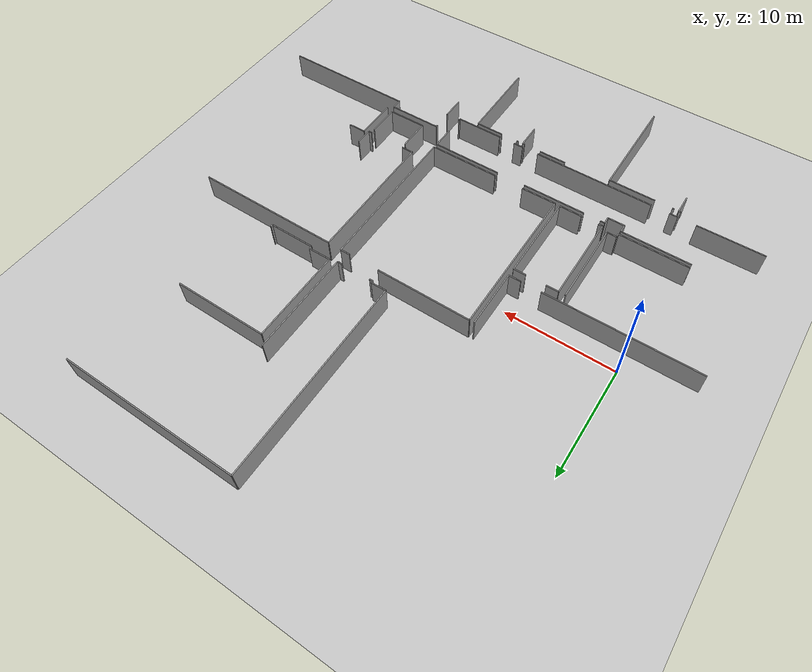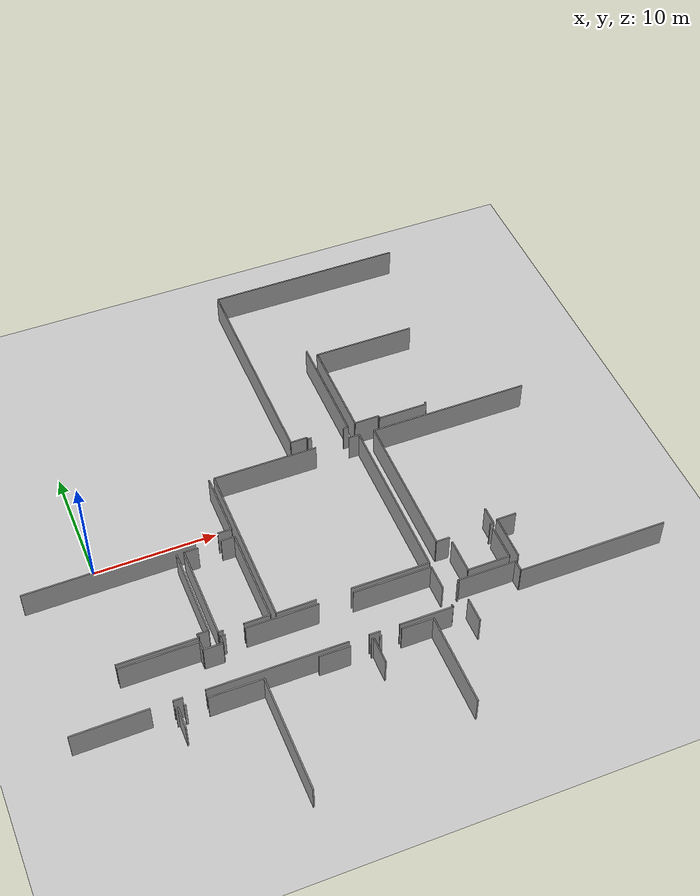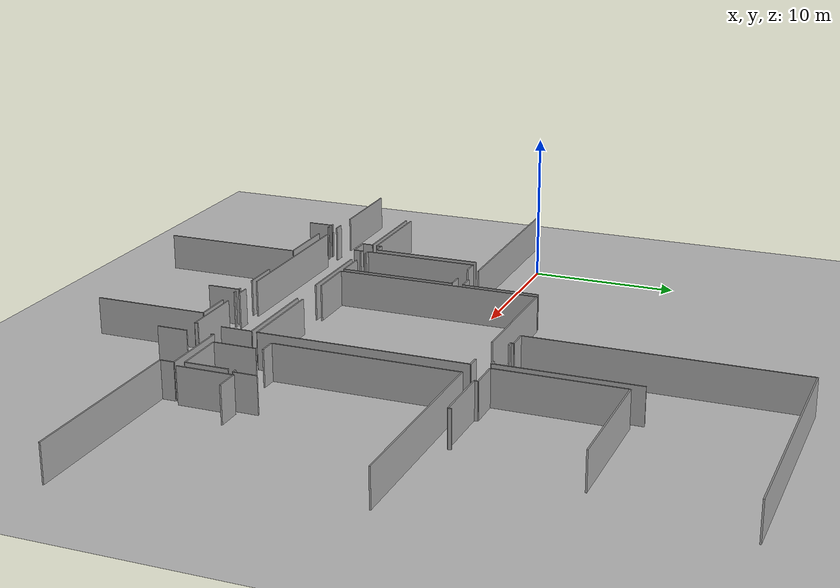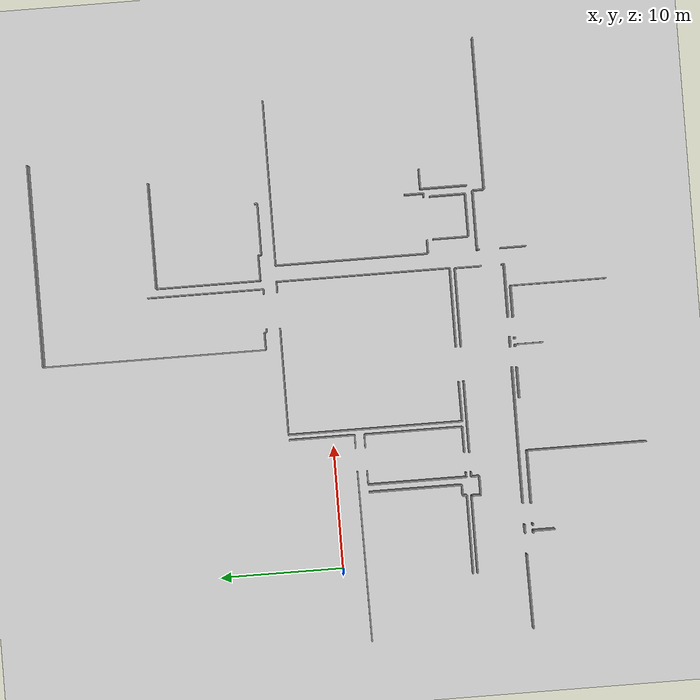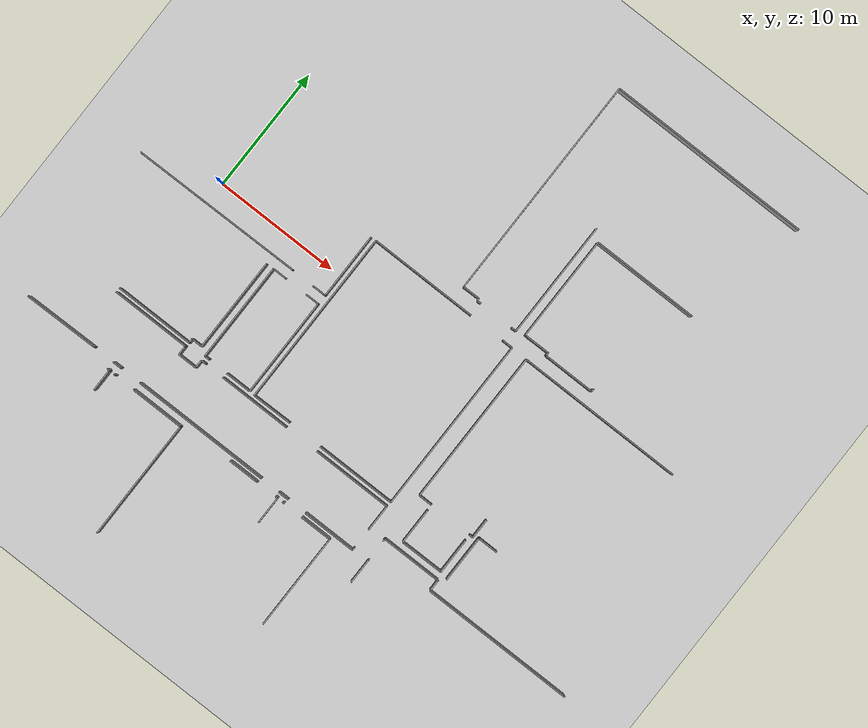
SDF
<sdf version="1.6">
 <world name="default">
  <model name="ground_plane">
   <static>1</static>
   <link name="link">
    <collision name="collision">
     <geometry><plane><normal>0 0 1</normal><size>100 100</size></plane></geometry>
     <surface><friction><ode><mu>100</mu><mu2>50</mu2></ode></friction></surface>
    </collision>
    <visual name="visual">
     <cast_shadows>0</cast_shadows>
     <geometry><plane><normal>0 0 1</normal><size>100 100</size></plane></geometry>
     <material>
      <script><uri>file://media/materials/scripts/gazebo.material</uri><name>Gazebo/Grey</name></script>
     </material>
    </visual>
   </link>
  </model>
  <model name="0510035342_A_40_1_101">
   <static>1</static>
   <link name="Wall_110">
    <collision name="Wall_110_Collision">
     <geometry><box><size>6.30219445291 0.1 2.5</size></box></geometry>
     <pose>3.15109722646 0 1.25 0 0 0</pose>
    </collision>
    <visual name="Wall_110_Visual">
     <pose>3.15109722646 0 1.25 0 0 0</pose>
     <geometry><box><size>6.30219445291 0.1 2.5</size></box></geometry>
     <material>
      <script><uri>file://media/materials/scripts/gazebo.material</uri><name>Gazebo/Grey</name></script>
      <ambient>1 1 1 1</ambient>
     </material>
    </visual>
    <pose>114.588286092 -36.1040841207 0 0 0 0.0</pose>
   </link>
   <link name="Wall_111">
    <collision name="Wall_111_Collision">
     <geometry><box><size>0.749009448339 0.1 2.5</size></box></geometry>
     <pose>0.374504724169 0 1.25 0 0 0</pose>
    </collision>
    <visual name="Wall_111_Visual">
     <pose>0.374504724169 0 1.25 0 0 0</pose>
     <geometry><box><size>0.749009448339 0.1 2.5</size></box></geometry>
     <material>
      <script><uri>file://media/materials/scripts/gazebo.material</uri><name>Gazebo/Grey</name></script>
      <ambient>1 1 1 1</ambient>
     </material>
    </visual>
    <pose>120.890480545 -36.1040841207 0 0 0 -1.57079632679</pose>
   </link>
   <link name="Wall_112">
    <collision name="Wall_112_Collision">
     <geometry><box><size>1.53637102509 0.1 2.5</size></box></geometry>
     <pose>0.768185512547 0 1.25 0 0 0</pose>
    </collision>
    <visual name="Wall_112_Visual">
     <pose>0.768185512547 0 1.25 0 0 0</pose>
     <geometry><box><size>1.53637102509 0.1 2.5</size></box></geometry>
     <material>
      <script><uri>file://media/materials/scripts/gazebo.material</uri><name>Gazebo/Grey</name></script>
      <ambient>1 1 1 1</ambient>
     </material>
    </visual>
    <pose>120.890480545 -36.853093569 0 0 0 0.0</pose>
   </link>
   <link name="Wall_113">
    <collision name="Wall_113_Collision">
     <geometry><box><size>0.653002133496 0.1 2.5</size></box></geometry>
     <pose>0.326501066748 0 1.25 0 0 0</pose>
    </collision>
    <visual name="Wall_113_Visual">
     <pose>0.326501066748 0 1.25 0 0 0</pose>
     <geometry><box><size>0.653002133496 0.1 2.5</size></box></geometry>
     <material>
      <script><uri>file://media/materials/scripts/gazebo.material</uri><name>Gazebo/Grey</name></script>
      <ambient>1 1 1 1</ambient>
     </material>
    </visual>
    <pose>122.42685157 -36.853093569 0 0 0 1.57079632679</pose>
   </link>
   <link name="Wall_114">
    <collision name="Wall_114_Collision">
     <geometry><box><size>0.403332317383 0.1 2.5</size></box></geometry>
     <pose>0.201666158691 0 1.25 0 0 0</pose>
    </collision>
    <visual name="Wall_114_Visual">
     <pose>0.201666158691 0 1.25 0 0 0</pose>
     <geometry><box><size>0.403332317383 0.1 2.5</size></box></geometry>
     <material>
      <script><uri>file://media/materials/scripts/gazebo.material</uri><name>Gazebo/Grey</name></script>
      <ambient>1 1 1 1</ambient>
     </material>
    </visual>
    <pose>122.42685157 -36.2000914355 0 0 0 0.0</pose>
   </link>
   <link name="Wall_115">
    <collision name="Wall_115_Collision">
     <geometry><box><size>5.81174438687 0.1 2.5</size></box></geometry>
     <pose>2.90587219344 0 1.25 0 0 0</pose>
    </collision>
    <visual name="Wall_115_Visual">
     <pose>2.90587219344 0 1.25 0 0 0</pose>
     <geometry><box><size>5.81174438687 0.1 2.5</size></box></geometry>
     <material>
      <script><uri>file://media/materials/scripts/gazebo.material</uri><name>Gazebo/Grey</name></script>
      <ambient>1 1 1 1</ambient>
     </material>
    </visual>
    <pose>124.382302144 -36.2000914355 0 0 0 0.0</pose>
   </link>
   <link name="Wall_116">
    <collision name="Wall_116_Collision">
     <geometry><box><size>6.40480544549 0.1 2.5</size></box></geometry>
     <pose>3.20240272275 0 1.25 0 0 0</pose>
    </collision>
    <visual name="Wall_116_Visual">
     <pose>3.20240272275 0 1.25 0 0 0</pose>
     <geometry><box><size>6.40480544549 0.1 2.5</size></box></geometry>
     <material>
      <script><uri>file://media/materials/scripts/gazebo.material</uri><name>Gazebo/Grey</name></script>
      <ambient>1 1 1 1</ambient>
     </material>
    </visual>
    <pose>132.941684446 -36.2000914355 0 0 0 0.0</pose>
   </link>
   <link name="Wall_117">
    <collision name="Wall_117_Collision">
     <geometry><box><size>2.1334958854 0.1 2.5</size></box></geometry>
     <pose>1.0667479427 0 1.25 0 0 0</pose>
    </collision>
    <visual name="Wall_117_Visual">
     <pose>1.0667479427 0 1.25 0 0 0</pose>
     <geometry><box><size>2.1334958854 0.1 2.5</size></box></geometry>
     <material>
      <script><uri>file://media/materials/scripts/gazebo.material</uri><name>Gazebo/Grey</name></script>
      <ambient>1 1 1 1</ambient>
     </material>
    </visual>
    <pose>139.346489891 -36.2000914355 0 0 0 -1.57079632679</pose>
   </link>
   <link name="Wall_118">
    <collision name="Wall_118_Collision">
     <geometry><box><size>0.200396220664 0.1 2.5</size></box></geometry>
     <pose>0.100198110332 0 1.25 0 0 0</pose>
    </collision>
    <visual name="Wall_118_Visual">
     <pose>0.100198110332 0 1.25 0 0 0</pose>
     <geometry><box><size>0.200396220664 0.1 2.5</size></box></geometry>
     <material>
      <script><uri>file://media/materials/scripts/gazebo.material</uri><name>Gazebo/Grey</name></script>
      <ambient>1 1 1 1</ambient>
     </material>
    </visual>
    <pose>139.346489891 -39.9870466321 0 0 0 -1.57079632679</pose>
   </link>
   <link name="Wall_119">
    <collision name="Wall_119_Collision">
     <geometry><box><size>4.32617088286 0.1 2.5</size></box></geometry>
     <pose>2.16308544143 0 1.25 0 0 0</pose>
    </collision>
    <visual name="Wall_119_Visual">
     <pose>2.16308544143 0 1.25 0 0 0</pose>
     <geometry><box><size>4.32617088286 0.1 2.5</size></box></geometry>
     <material>
      <script><uri>file://media/materials/scripts/gazebo.material</uri><name>Gazebo/Grey</name></script>
      <ambient>1 1 1 1</ambient>
     </material>
    </visual>
    <pose>139.346489891 -40.1874428528 0 0 0 3.14159265359</pose>
   </link>
   <link name="Wall_120">
    <collision name="Wall_120_Collision">
     <geometry><box><size>0.883876866809 0.1 2.5</size></box></geometry>
     <pose>0.441938433404 0 1.25 0 0 0</pose>
    </collision>
    <visual name="Wall_120_Visual">
     <pose>0.441938433404 0 1.25 0 0 0</pose>
     <geometry><box><size>0.883876866809 0.1 2.5</size></box></geometry>
     <material>
      <script><uri>file://media/materials/scripts/gazebo.material</uri><name>Gazebo/Grey</name></script>
      <ambient>1 1 1 1</ambient>
     </material>
    </visual>
    <pose>133.48115412 -40.1874428528 0 0 0 3.14159265359</pose>
   </link>
   <link name="Wall_121">
    <collision name="Wall_121_Collision">
     <geometry><box><size>11.0850350503 0.1 2.5</size></box></geometry>
     <pose>5.54251752514 0 1.25 0 0 0</pose>
    </collision>
    <visual name="Wall_121_Visual">
     <pose>5.54251752514 0 1.25 0 0 0</pose>
     <geometry><box><size>11.0850350503 0.1 2.5</size></box></geometry>
     <material>
      <script><uri>file://media/materials/scripts/gazebo.material</uri><name>Gazebo/Grey</name></script>
      <ambient>1 1 1 1</ambient>
     </material>
    </visual>
    <pose>131.028903789 -40.1874428528 0 0 0 3.14159265359</pose>
   </link>
   <link name="Wall_122">
    <collision name="Wall_122_Collision">
     <geometry><box><size>0.729960377934 0.1 2.5</size></box></geometry>
     <pose>0.364980188967 0 1.25 0 0 0</pose>
    </collision>
    <visual name="Wall_122_Visual">
     <pose>0.364980188967 0 1.25 0 0 0</pose>
     <geometry><box><size>0.729960377934 0.1 2.5</size></box></geometry>
     <material>
      <script><uri>file://media/materials/scripts/gazebo.material</uri><name>Gazebo/Grey</name></script>
      <ambient>1 1 1 1</ambient>
     </material>
    </visual>
    <pose>118.240119882 -40.1874428528 0 0 0 3.14159265359</pose>
   </link>
   <link name="Wall_123">
    <collision name="Wall_123_Collision">
     <geometry><box><size>6.03560372053 0.1 2.5</size></box></geometry>
     <pose>3.01780186027 0 1.25 0 0 0</pose>
    </collision>
    <visual name="Wall_123_Visual">
     <pose>3.01780186027 0 1.25 0 0 0</pose>
     <geometry><box><size>6.03560372053 0.1 2.5</size></box></geometry>
     <material>
      <script><uri>file://media/materials/scripts/gazebo.material</uri><name>Gazebo/Grey</name></script>
      <ambient>1 1 1 1</ambient>
     </material>
    </visual>
    <pose>115.824951742 -40.1874428528 0 0 0 -3.13081956647</pose>
   </link>
   <link name="Wall_151">
    <collision name="Wall_151_Collision">
     <geometry><box><size>5.3149446307 0.1 2.5</size></box></geometry>
     <pose>2.65747231535 0 1.25 0 0 0</pose>
    </collision>
    <visual name="Wall_151_Visual">
     <pose>2.65747231535 0 1.25 0 0 0</pose>
     <geometry><box><size>5.3149446307 0.1 2.5</size></box></geometry>
     <material>
      <script><uri>file://media/materials/scripts/gazebo.material</uri><name>Gazebo/Grey</name></script>
      <ambient>1 1 1 1</ambient>
     </material>
    </visual>
    <pose>126.522147719 -21.7410850351 0 0 0 -1.57079632679</pose>
   </link>
   <link name="Wall_152">
    <collision name="Wall_152_Collision">
     <geometry><box><size>1.1183074266 0.1 2.5</size></box></geometry>
     <pose>0.559153713299 0 1.25 0 0 0</pose>
    </collision>
    <visual name="Wall_152_Visual">
     <pose>0.559153713299 0 1.25 0 0 0</pose>
     <geometry><box><size>1.1183074266 0.1 2.5</size></box></geometry>
     <material>
      <script><uri>file://media/materials/scripts/gazebo.material</uri><name>Gazebo/Grey</name></script>
      <ambient>1 1 1 1</ambient>
     </material>
    </visual>
    <pose>126.522147719 -27.0560296658 0 0 0 3.14159265359</pose>
   </link>
   <link name="Wall_153">
    <collision name="Wall_153_Collision">
     <geometry><box><size>13.7776782479 0.1 2.5</size></box></geometry>
     <pose>6.88883912393 0 1.25 0 0 0</pose>
    </collision>
    <visual name="Wall_153_Visual">
     <pose>6.88883912393 0 1.25 0 0 0</pose>
     <geometry><box><size>13.7776782479 0.1 2.5</size></box></geometry>
     <material>
      <script><uri>file://media/materials/scripts/gazebo.material</uri><name>Gazebo/Grey</name></script>
      <ambient>1 1 1 1</ambient>
     </material>
    </visual>
    <pose>123.555826476 -27.0560296658 0 0 0 -3.13421869979</pose>
   </link>
   <link name="Wall_154">
    <collision name="Wall_154_Collision">
     <geometry><box><size>7.96479731789 0.1 2.5</size></box></geometry>
     <pose>3.98239865895 0 1.25 0 0 0</pose>
    </collision>
    <visual name="Wall_154_Visual">
     <pose>3.98239865895 0 1.25 0 0 0</pose>
     <geometry><box><size>7.96479731789 0.1 2.5</size></box></geometry>
     <material>
      <script><uri>file://media/materials/scripts/gazebo.material</uri><name>Gazebo/Grey</name></script>
      <ambient>1 1 1 1</ambient>
     </material>
    </visual>
    <pose>122.42050188 -35.8048867215 0 0 0 1.57079632679</pose>
   </link>
   <link name="Wall_155">
    <collision name="Wall_155_Collision">
     <geometry><box><size>1.11322767449 0.1 2.5</size></box></geometry>
     <pose>0.556613837245 0 1.25 0 0 0</pose>
    </collision>
    <visual name="Wall_155_Visual">
     <pose>0.556613837245 0 1.25 0 0 0</pose>
     <geometry><box><size>1.11322767449 0.1 2.5</size></box></geometry>
     <material>
      <script><uri>file://media/materials/scripts/gazebo.material</uri><name>Gazebo/Grey</name></script>
      <ambient>1 1 1 1</ambient>
     </material>
    </visual>
    <pose>122.42050188 -27.8400894036 0 0 0 0.0</pose>
   </link>
   <link name="Wall_156">
    <collision name="Wall_156_Collision">
     <geometry><box><size>1.10459209591 0.1 2.5</size></box></geometry>
     <pose>0.552296047953 0 1.25 0 0 0</pose>
    </collision>
    <visual name="Wall_156_Visual">
     <pose>0.552296047953 0 1.25 0 0 0</pose>
     <geometry><box><size>1.10459209591 0.1 2.5</size></box></geometry>
     <material>
      <script><uri>file://media/materials/scripts/gazebo.material</uri><name>Gazebo/Grey</name></script>
      <ambient>1 1 1 1</ambient>
     </material>
    </visual>
    <pose>125.394696739 -27.8400894036 0 0 0 0.0</pose>
   </link>
   <link name="Wall_157">
    <collision name="Wall_157_Collision">
     <geometry><box><size>7.95387585086 0.1 2.5</size></box></geometry>
     <pose>3.97693792543 0 1.25 0 0 0</pose>
    </collision>
    <visual name="Wall_157_Visual">
     <pose>3.97693792543 0 1.25 0 0 0</pose>
     <geometry><box><size>7.95387585086 0.1 2.5</size></box></geometry>
     <material>
      <script><uri>file://media/materials/scripts/gazebo.material</uri><name>Gazebo/Grey</name></script>
      <ambient>1 1 1 1</ambient>
     </material>
    </visual>
    <pose>126.499288835 -27.8400894036 0 0 0 -1.57079632679</pose>
   </link>
   <link name="Wall_158">
    <collision name="Wall_158_Collision">
     <geometry><box><size>2.08701615361 0.1 2.5</size></box></geometry>
     <pose>1.04350807681 0 1.25 0 0 0</pose>
    </collision>
    <visual name="Wall_158_Visual">
     <pose>1.04350807681 0 1.25 0 0 0</pose>
     <geometry><box><size>2.08701615361 0.1 2.5</size></box></geometry>
     <material>
      <script><uri>file://media/materials/scripts/gazebo.material</uri><name>Gazebo/Grey</name></script>
      <ambient>1 1 1 1</ambient>
     </material>
    </visual>
    <pose>126.499288835 -35.7939652545 0 0 0 3.14159265359</pose>
   </link>
   <link name="Wall_159">
    <collision name="Wall_159_Collision">
     <geometry><box><size>0.395355592369 0.1 2.5</size></box></geometry>
     <pose>0.197677796185 0 1.25 0 0 0</pose>
    </collision>
    <visual name="Wall_159_Visual">
     <pose>0.197677796185 0 1.25 0 0 0</pose>
     <geometry><box><size>0.395355592369 0.1 2.5</size></box></geometry>
     <material>
      <script><uri>file://media/materials/scripts/gazebo.material</uri><name>Gazebo/Grey</name></script>
      <ambient>1 1 1 1</ambient>
     </material>
    </visual>
    <pose>122.815706594 -35.7939652545 0 0 0 -3.11396472379</pose>
   </link>
   <link name="Wall_162">
    <collision name="Wall_162_Collision">
     <geometry><box><size>7.54546378137 0.1 2.5</size></box></geometry>
     <pose>3.77273189068 0 1.25 0 0 0</pose>
    </collision>
    <visual name="Wall_162_Visual">
     <pose>3.77273189068 0 1.25 0 0 0</pose>
     <geometry><box><size>7.54546378137 0.1 2.5</size></box></geometry>
     <material>
      <script><uri>file://media/materials/scripts/gazebo.material</uri><name>Gazebo/Grey</name></script>
      <ambient>1 1 1 1</ambient>
     </material>
    </visual>
    <pose>121.813217515 -27.8459311186 0 0 0 -1.57079632679</pose>
   </link>
   <link name="Wall_163">
    <collision name="Wall_163_Collision">
     <geometry><box><size>0.867367672458 0.1 2.5</size></box></geometry>
     <pose>0.433683836229 0 1.25 0 0 0</pose>
    </collision>
    <visual name="Wall_163_Visual">
     <pose>0.433683836229 0 1.25 0 0 0</pose>
     <geometry><box><size>0.867367672458 0.1 2.5</size></box></geometry>
     <material>
      <script><uri>file://media/materials/scripts/gazebo.material</uri><name>Gazebo/Grey</name></script>
      <ambient>1 1 1 1</ambient>
     </material>
    </visual>
    <pose>121.813217515 -35.3913948999 0 0 0 3.14159265359</pose>
   </link>
   <link name="Wall_164">
    <collision name="Wall_164_Collision">
     <geometry><box><size>0.348724982221 0.1 2.5</size></box></geometry>
     <pose>0.17436249111 0 1.25 0 0 0</pose>
    </collision>
    <visual name="Wall_164_Visual">
     <pose>0.17436249111 0 1.25 0 0 0</pose>
     <geometry><box><size>0.348724982221 0.1 2.5</size></box></geometry>
     <material>
      <script><uri>file://media/materials/scripts/gazebo.material</uri><name>Gazebo/Grey</name></script>
      <ambient>1 1 1 1</ambient>
     </material>
    </visual>
    <pose>120.945849843 -35.3913948999 0 0 0 -1.57079632679</pose>
   </link>
   <link name="Wall_165">
    <collision name="Wall_165_Collision">
     <geometry><box><size>6.36543736666 0.1 2.5</size></box></geometry>
     <pose>3.18271868333 0 1.25 0 0 0</pose>
    </collision>
    <visual name="Wall_165_Visual">
     <pose>3.18271868333 0 1.25 0 0 0</pose>
     <geometry><box><size>6.36543736666 0.1 2.5</size></box></geometry>
     <material>
      <script><uri>file://media/materials/scripts/gazebo.material</uri><name>Gazebo/Grey</name></script>
      <ambient>1 1 1 1</ambient>
     </material>
    </visual>
    <pose>120.945849843 -35.7401198821 0 0 0 3.14159265359</pose>
   </link>
   <link name="Wall_167">
    <collision name="Wall_167_Collision">
     <geometry><box><size>14.1077415422 0.1 2.5</size></box></geometry>
     <pose>7.05387077111 0 1.25 0 0 0</pose>
    </collision>
    <visual name="Wall_167_Visual">
     <pose>7.05387077111 0 1.25 0 0 0</pose>
     <geometry><box><size>14.1077415422 0.1 2.5</size></box></geometry>
     <material>
      <script><uri>file://media/materials/scripts/gazebo.material</uri><name>Gazebo/Grey</name></script>
      <ambient>1 1 1 1</ambient>
     </material>
    </visual>
    <pose>126.943259169 -35.8272376308 0 0 0 1.57079632679</pose>
   </link>
   <link name="Wall_168">
    <collision name="Wall_168_Collision">
     <geometry><box><size>8.67824850147 0.1 2.5</size></box></geometry>
     <pose>4.33912425074 0 1.25 0 0 0</pose>
    </collision>
    <visual name="Wall_168_Visual">
     <pose>4.33912425074 0 1.25 0 0 0</pose>
     <geometry><box><size>8.67824850147 0.1 2.5</size></box></geometry>
     <material>
      <script><uri>file://media/materials/scripts/gazebo.material</uri><name>Gazebo/Grey</name></script>
      <ambient>1 1 1 1</ambient>
     </material>
    </visual>
    <pose>126.943259169 -21.7194960886 0 0 0 0.0</pose>
   </link>
   <link name="Wall_169">
    <collision name="Wall_169_Collision">
     <geometry><box><size>0.876257238647 0.1 2.5</size></box></geometry>
     <pose>0.438128619323 0 1.25 0 0 0</pose>
    </collision>
    <visual name="Wall_169_Visual">
     <pose>0.438128619323 0 1.25 0 0 0</pose>
     <geometry><box><size>0.876257238647 0.1 2.5</size></box></geometry>
     <material>
      <script><uri>file://media/materials/scripts/gazebo.material</uri><name>Gazebo/Grey</name></script>
      <ambient>1 1 1 1</ambient>
     </material>
    </visual>
    <pose>138.507822818 -21.7194960886 0 0 0 0.0</pose>
   </link>
   <link name="Wall_170">
    <collision name="Wall_170_Collision">
     <geometry><box><size>14.0744691659 0.1 2.5</size></box></geometry>
     <pose>7.03723458295 0 1.25 0 0 0</pose>
    </collision>
    <visual name="Wall_170_Visual">
     <pose>7.03723458295 0 1.25 0 0 0</pose>
     <geometry><box><size>14.0744691659 0.1 2.5</size></box></geometry>
     <material>
      <script><uri>file://media/materials/scripts/gazebo.material</uri><name>Gazebo/Grey</name></script>
      <ambient>1 1 1 1</ambient>
     </material>
    </visual>
    <pose>139.384080057 -21.7194960886 0 0 0 -1.57079632679</pose>
   </link>
   <link name="Wall_171">
    <collision name="Wall_171_Collision">
     <geometry><box><size>6.44341156152 0.1 2.5</size></box></geometry>
     <pose>3.22170578076 0 1.25 0 0 0</pose>
    </collision>
    <visual name="Wall_171_Visual">
     <pose>3.22170578076 0 1.25 0 0 0</pose>
     <geometry><box><size>6.44341156152 0.1 2.5</size></box></geometry>
     <material>
      <script><uri>file://media/materials/scripts/gazebo.material</uri><name>Gazebo/Grey</name></script>
      <ambient>1 1 1 1</ambient>
     </material>
    </visual>
    <pose>139.384080057 -35.7939652545 0 0 0 3.14159265359</pose>
   </link>
   <link name="Wall_172">
    <collision name="Wall_172_Collision">
     <geometry><box><size>3.22327444486 0.1 2.5</size></box></geometry>
     <pose>1.61163722243 0 1.25 0 0 0</pose>
    </collision>
    <visual name="Wall_172_Visual">
     <pose>1.61163722243 0 1.25 0 0 0</pose>
     <geometry><box><size>3.22327444486 0.1 2.5</size></box></geometry>
     <material>
      <script><uri>file://media/materials/scripts/gazebo.material</uri><name>Gazebo/Grey</name></script>
      <ambient>1 1 1 1</ambient>
     </material>
    </visual>
    <pose>130.166361882 -35.7939652545 0 0 0 -3.13126993122</pose>
   </link>
   <link name="Wall_175">
    <collision name="Wall_175_Collision">
     <geometry><box><size>0.203190084324 0.1 2.5</size></box></geometry>
     <pose>0.101595042162 0 1.25 0 0 0</pose>
    </collision>
    <visual name="Wall_175_Visual">
     <pose>0.101595042162 0 1.25 0 0 0</pose>
     <geometry><box><size>0.203190084324 0.1 2.5</size></box></geometry>
     <material>
      <script><uri>file://media/materials/scripts/gazebo.material</uri><name>Gazebo/Grey</name></script>
      <ambient>1 1 1 1</ambient>
     </material>
    </visual>
    <pose>117.475109215 -40.838667073 0 0 0 0.0</pose>
   </link>
   <link name="Wall_176">
    <collision name="Wall_176_Collision">
     <geometry><box><size>1.78527887839 0.1 2.5</size></box></geometry>
     <pose>0.892639439195 0 1.25 0 0 0</pose>
    </collision>
    <visual name="Wall_176_Visual">
     <pose>0.892639439195 0 1.25 0 0 0</pose>
     <geometry><box><size>1.78527887839 0.1 2.5</size></box></geometry>
     <material>
      <script><uri>file://media/materials/scripts/gazebo.material</uri><name>Gazebo/Grey</name></script>
      <ambient>1 1 1 1</ambient>
     </material>
    </visual>
    <pose>117.678299299 -40.838667073 0 0 0 -1.57079632679</pose>
   </link>
   <link name="Wall_203">
    <collision name="Wall_203_Collision">
     <geometry><box><size>0.173219546886 0.1 2.5</size></box></geometry>
     <pose>0.0866097734431 0 1.25 0 0 0</pose>
    </collision>
    <visual name="Wall_203_Visual">
     <pose>0.0866097734431 0 1.25 0 0 0</pose>
     <geometry><box><size>0.173219546886 0.1 2.5</size></box></geometry>
     <material>
      <script><uri>file://media/materials/scripts/gazebo.material</uri><name>Gazebo/Grey</name></script>
      <ambient>1 1 1 1</ambient>
     </material>
    </visual>
    <pose>118.095346947 -40.8528903789 0 0 0 0.0</pose>
   </link>
   <link name="Wall_204">
    <collision name="Wall_204_Collision">
     <geometry><box><size>4.30051813472 0.1 2.5</size></box></geometry>
     <pose>2.15025906736 0 1.25 0 0 0</pose>
    </collision>
    <visual name="Wall_204_Visual">
     <pose>2.15025906736 0 1.25 0 0 0</pose>
     <geometry><box><size>4.30051813472 0.1 2.5</size></box></geometry>
     <material>
      <script><uri>file://media/materials/scripts/gazebo.material</uri><name>Gazebo/Grey</name></script>
      <ambient>1 1 1 1</ambient>
     </material>
    </visual>
    <pose>119.876816011 -40.8528903789 0 0 0 0.0</pose>
   </link>
   <link name="Wall_205">
    <collision name="Wall_205_Collision">
     <geometry><box><size>9.67692776593 0.1 2.5</size></box></geometry>
     <pose>4.83846388296 0 1.25 0 0 0</pose>
    </collision>
    <visual name="Wall_205_Visual">
     <pose>4.83846388296 0 1.25 0 0 0</pose>
     <geometry><box><size>9.67692776593 0.1 2.5</size></box></geometry>
     <material>
      <script><uri>file://media/materials/scripts/gazebo.material</uri><name>Gazebo/Grey</name></script>
      <ambient>1 1 1 1</ambient>
     </material>
    </visual>
    <pose>124.177334146 -40.8528903789 0 0 0 -1.57079632679</pose>
   </link>
   <link name="Wall_208">
    <collision name="Wall_208_Collision">
     <geometry><box><size>2.51244539266 0.1 2.5</size></box></geometry>
     <pose>1.25622269633 0 1.25 0 0 0</pose>
    </collision>
    <visual name="Wall_208_Visual">
     <pose>1.25622269633 0 1.25 0 0 0</pose>
     <geometry><box><size>2.51244539266 0.1 2.5</size></box></geometry>
     <material>
      <script><uri>file://media/materials/scripts/gazebo.material</uri><name>Gazebo/Grey</name></script>
      <ambient>1 1 1 1</ambient>
     </material>
    </visual>
    <pose>128.467946764 -40.5757899015 0 0 0 0.0</pose>
   </link>
   <link name="Wall_209">
    <collision name="Wall_209_Collision">
     <geometry><box><size>0.19785634461 0.1 2.5</size></box></geometry>
     <pose>0.0989281723052 0 1.25 0 0 0</pose>
    </collision>
    <visual name="Wall_209_Visual">
     <pose>0.0989281723052 0 1.25 0 0 0</pose>
     <geometry><box><size>0.19785634461 0.1 2.5</size></box></geometry>
     <material>
      <script><uri>file://media/materials/scripts/gazebo.material</uri><name>Gazebo/Grey</name></script>
      <ambient>1 1 1 1</ambient>
     </material>
    </visual>
    <pose>132.610230621 -40.5757899015 0 0 0 0.0</pose>
   </link>
   <link name="Wall_210">
    <collision name="Wall_210_Collision">
     <geometry><box><size>2.23610687798 0.1 2.5</size></box></geometry>
     <pose>1.11805343899 0 1.25 0 0 0</pose>
    </collision>
    <visual name="Wall_210_Visual">
     <pose>1.11805343899 0 1.25 0 0 0</pose>
     <geometry><box><size>2.23610687798 0.1 2.5</size></box></geometry>
     <material>
      <script><uri>file://media/materials/scripts/gazebo.material</uri><name>Gazebo/Grey</name></script>
      <ambient>1 1 1 1</ambient>
     </material>
    </visual>
    <pose>132.808086965 -40.5757899015 0 0 0 -1.57079632679</pose>
   </link>
   <link name="Wall_235">
    <collision name="Wall_235_Collision">
     <geometry><box><size>0.193030580108 0.1 2.5</size></box></geometry>
     <pose>0.0965152900538 0 1.25 0 0 0</pose>
    </collision>
    <visual name="Wall_235_Visual">
     <pose>0.0965152900538 0 1.25 0 0 0</pose>
     <geometry><box><size>0.193030580108 0.1 2.5</size></box></geometry>
     <material>
      <script><uri>file://media/materials/scripts/gazebo.material</uri><name>Gazebo/Grey</name></script>
      <ambient>1 1 1 1</ambient>
     </material>
    </visual>
    <pose>133.244437671 -40.5856954181 0 0 0 0.0</pose>
   </link>
   <link name="Wall_236">
    <collision name="Wall_236_Collision">
     <geometry><box><size>2.57619628162 0.1 2.5</size></box></geometry>
     <pose>1.28809814081 0 1.25 0 0 0</pose>
    </collision>
    <visual name="Wall_236_Visual">
     <pose>1.28809814081 0 1.25 0 0 0</pose>
     <geometry><box><size>2.57619628162 0.1 2.5</size></box></geometry>
     <material>
      <script><uri>file://media/materials/scripts/gazebo.material</uri><name>Gazebo/Grey</name></script>
      <ambient>1 1 1 1</ambient>
     </material>
    </visual>
    <pose>135.009143554 -40.5856954181 0 0 0 0.0</pose>
   </link>
   <link name="Wall_237">
    <collision name="Wall_237_Collision">
     <geometry><box><size>7.72782688205 0.1 2.5</size></box></geometry>
     <pose>3.86391344102 0 1.25 0 0 0</pose>
    </collision>
    <visual name="Wall_237_Visual">
     <pose>3.86391344102 0 1.25 0 0 0</pose>
     <geometry><box><size>7.72782688205 0.1 2.5</size></box></geometry>
     <material>
      <script><uri>file://media/materials/scripts/gazebo.material</uri><name>Gazebo/Grey</name></script>
      <ambient>1 1 1 1</ambient>
     </material>
    </visual>
    <pose>137.585339835 -40.5856954181 0 0 0 -1.57079632679</pose>
   </link>
   <link name="Wall_301">
    <collision name="Wall_301_Collision">
     <geometry><box><size>18.0618205832 0.1 2.5</size></box></geometry>
     <pose>9.03091029158 0 1.25 0 0 0</pose>
    </collision>
    <visual name="Wall_301_Visual">
     <pose>9.03091029158 0 1.25 0 0 0</pose>
     <geometry><box><size>18.0618205832 0.1 2.5</size></box></geometry>
     <material>
      <script><uri>file://media/materials/scripts/gazebo.material</uri><name>Gazebo/Grey</name></script>
      <ambient>1 1 1 1</ambient>
     </material>
    </visual>
    <pose>133.939855735 -20.4399065326 0 0 0 1.57079632679</pose>
   </link>
   <link name="Wall_302">
    <collision name="Wall_302_Collision">
     <geometry><box><size>16.383216499 0.1 2.5</size></box></geometry>
     <pose>8.19160824952 0 1.25 0 0 0</pose>
    </collision>
    <visual name="Wall_302_Visual">
     <pose>8.19160824952 0 1.25 0 0 0</pose>
     <geometry><box><size>16.383216499 0.1 2.5</size></box></geometry>
     <material>
      <script><uri>file://media/materials/scripts/gazebo.material</uri><name>Gazebo/Grey</name></script>
      <ambient>1 1 1 1</ambient>
     </material>
    </visual>
    <pose>133.939855735 -2.37808594941 0 0 0 0.0</pose>
   </link>
   <link name="Wall_325">
    <collision name="Wall_325_Collision">
     <geometry><box><size>9.37315858986 0.1 2.5</size></box></geometry>
     <pose>4.68657929493 0 1.25 0 0 0</pose>
    </collision>
    <visual name="Wall_325_Visual">
     <pose>4.68657929493 0 1.25 0 0 0</pose>
     <geometry><box><size>9.37315858986 0.1 2.5</size></box></geometry>
     <material>
      <script><uri>file://media/materials/scripts/gazebo.material</uri><name>Gazebo/Grey</name></script>
      <ambient>1 1 1 1</ambient>
     </material>
    </visual>
    <pose>138.860611602 -11.2417454028 0 0 0 -1.57079632679</pose>
   </link>
   <link name="Wall_326">
    <collision name="Wall_326_Collision">
     <geometry><box><size>0.416793660469 0.1 2.5</size></box></geometry>
     <pose>0.208396830235 0 1.25 0 0 0</pose>
    </collision>
    <visual name="Wall_326_Visual">
     <pose>0.208396830235 0 1.25 0 0 0</pose>
     <geometry><box><size>0.416793660469 0.1 2.5</size></box></geometry>
     <material>
      <script><uri>file://media/materials/scripts/gazebo.material</uri><name>Gazebo/Grey</name></script>
      <ambient>1 1 1 1</ambient>
     </material>
    </visual>
    <pose>138.860611602 -20.6149039927 0 0 0 3.14159265359</pose>
   </link>
   <link name="Wall_327">
    <collision name="Wall_327_Collision">
     <geometry><box><size>0.331199837448 0.1 2.5</size></box></geometry>
     <pose>0.165599918724 0 1.25 0 0 0</pose>
    </collision>
    <visual name="Wall_327_Visual">
     <pose>0.165599918724 0 1.25 0 0 0</pose>
     <geometry><box><size>0.331199837448 0.1 2.5</size></box></geometry>
     <material>
      <script><uri>file://media/materials/scripts/gazebo.material</uri><name>Gazebo/Grey</name></script>
      <ambient>1 1 1 1</ambient>
     </material>
    </visual>
    <pose>135.658081886 -20.6149039927 0 0 0 3.14159265359</pose>
   </link>
   <link name="Wall_328">
    <collision name="Wall_328_Collision">
     <geometry><box><size>0.192776592502 0.1 2.5</size></box></geometry>
     <pose>0.0963882962511 0 1.25 0 0 0</pose>
    </collision>
    <visual name="Wall_328_Visual">
     <pose>0.0963882962511 0 1.25 0 0 0</pose>
     <geometry><box><size>0.192776592502 0.1 2.5</size></box></geometry>
     <material>
      <script><uri>file://media/materials/scripts/gazebo.material</uri><name>Gazebo/Grey</name></script>
      <ambient>1 1 1 1</ambient>
     </material>
    </visual>
    <pose>135.326882048 -20.6149039927 0 0 0 1.57079632679</pose>
   </link>
   <link name="Wall_329">
    <collision name="Wall_329_Collision">
     <geometry><box><size>1.38714025636 0.1 2.5</size></box></geometry>
     <pose>0.693570128182 0 1.25 0 0 0</pose>
    </collision>
    <visual name="Wall_329_Visual">
     <pose>0.693570128182 0 1.25 0 0 0</pose>
     <geometry><box><size>1.38714025636 0.1 2.5</size></box></geometry>
     <material>
      <script><uri>file://media/materials/scripts/gazebo.material</uri><name>Gazebo/Grey</name></script>
      <ambient>1 1 1 1</ambient>
     </material>
    </visual>
    <pose>135.326882048 -20.4221274002 0 0 0 -3.12877519038</pose>
   </link>
   <link name="Wall_353">
    <collision name="Wall_353_Collision">
     <geometry><box><size>8.45042161942 0.1 2.5</size></box></geometry>
     <pose>4.22521080971 0 1.25 0 0 0</pose>
    </collision>
    <visual name="Wall_353_Visual">
     <pose>4.22521080971 0 1.25 0 0 0</pose>
     <geometry><box><size>8.45042161942 0.1 2.5</size></box></geometry>
     <material>
      <script><uri>file://media/materials/scripts/gazebo.material</uri><name>Gazebo/Grey</name></script>
      <ambient>1 1 1 1</ambient>
     </material>
    </visual>
    <pose>139.557807579 -20.4327948796 0 0 0 1.57079632679</pose>
   </link>
   <link name="Wall_354">
    <collision name="Wall_354_Collision">
     <geometry><box><size>8.55836635172 0.1 2.5</size></box></geometry>
     <pose>4.27918317586 0 1.25 0 0 0</pose>
    </collision>
    <visual name="Wall_354_Visual">
     <pose>4.27918317586 0 1.25 0 0 0</pose>
     <geometry><box><size>8.55836635172 0.1 2.5</size></box></geometry>
     <material>
      <script><uri>file://media/materials/scripts/gazebo.material</uri><name>Gazebo/Grey</name></script>
      <ambient>1 1 1 1</ambient>
     </material>
    </visual>
    <pose>139.557807579 -11.9823732602 0 0 0 0.0</pose>
   </link>
   <link name="Wall_358">
    <collision name="Wall_358_Collision">
     <geometry><box><size>0.230366758102 0.1 2.5</size></box></geometry>
     <pose>0.115183379051 0 1.25 0 0 0</pose>
    </collision>
    <visual name="Wall_358_Visual">
     <pose>0.115183379051 0 1.25 0 0 0</pose>
     <geometry><box><size>0.230366758102 0.1 2.5</size></box></geometry>
     <material>
      <script><uri>file://media/materials/scripts/gazebo.material</uri><name>Gazebo/Grey</name></script>
      <ambient>1 1 1 1</ambient>
     </material>
    </visual>
    <pose>145.799298994 -20.4327948796 0 0 0 -1.57079632679</pose>
   </link>
   <link name="Wall_359">
    <collision name="Wall_359_Collision">
     <geometry><box><size>4.16742862948 0.1 2.5</size></box></geometry>
     <pose>2.08371431474 0 1.25 0 0 0</pose>
    </collision>
    <visual name="Wall_359_Visual">
     <pose>2.08371431474 0 1.25 0 0 0</pose>
     <geometry><box><size>4.16742862948 0.1 2.5</size></box></geometry>
     <material>
      <script><uri>file://media/materials/scripts/gazebo.material</uri><name>Gazebo/Grey</name></script>
      <ambient>1 1 1 1</ambient>
     </material>
    </visual>
    <pose>145.799298994 -20.6631616377 0 0 0 3.14159265359</pose>
   </link>
   <link name="Wall_360">
    <collision name="Wall_360_Collision">
     <geometry><box><size>0.249669816113 0.1 2.5</size></box></geometry>
     <pose>0.124834908056 0 1.25 0 0 0</pose>
    </collision>
    <visual name="Wall_360_Visual">
     <pose>0.124834908056 0 1.25 0 0 0</pose>
     <geometry><box><size>0.249669816113 0.1 2.5</size></box></geometry>
     <material>
      <script><uri>file://media/materials/scripts/gazebo.material</uri><name>Gazebo/Grey</name></script>
      <ambient>1 1 1 1</ambient>
     </material>
    </visual>
    <pose>141.631870365 -20.6631616377 0 0 0 1.57079632679</pose>
   </link>
   <link name="Wall_361">
    <collision name="Wall_361_Collision">
     <geometry><box><size>2.07415260943 0.1 2.5</size></box></geometry>
     <pose>1.03707630472 0 1.25 0 0 0</pose>
    </collision>
    <visual name="Wall_361_Visual">
     <pose>1.03707630472 0 1.25 0 0 0</pose>
     <geometry><box><size>2.07415260943 0.1 2.5</size></box></geometry>
     <material>
      <script><uri>file://media/materials/scripts/gazebo.material</uri><name>Gazebo/Grey</name></script>
      <ambient>1 1 1 1</ambient>
     </material>
    </visual>
    <pose>141.631870365 -20.4134918216 0 0 0 -3.1322860401</pose>
   </link>
   <link name="Wall_362">
    <collision name="Wall_362_Collision">
     <geometry><box><size>12.3900233669 0.1 2.5</size></box></geometry>
     <pose>6.19501168343 0 1.25 0 0 0</pose>
    </collision>
    <visual name="Wall_362_Visual">
     <pose>6.19501168343 0 1.25 0 0 0</pose>
     <geometry><box><size>12.3900233669 0.1 2.5</size></box></geometry>
     <material>
      <script><uri>file://media/materials/scripts/gazebo.material</uri><name>Gazebo/Grey</name></script>
      <ambient>1 1 1 1</ambient>
     </material>
    </visual>
    <pose>140.69364015 -34.137458092 0 0 0 1.57079632679</pose>
   </link>
   <link name="Wall_363">
    <collision name="Wall_363_Collision">
     <geometry><box><size>13.3620339327 0.1 2.5</size></box></geometry>
     <pose>6.68101696637 0 1.25 0 0 0</pose>
    </collision>
    <visual name="Wall_363_Visual">
     <pose>6.68101696637 0 1.25 0 0 0</pose>
     <geometry><box><size>13.3620339327 0.1 2.5</size></box></geometry>
     <material>
      <script><uri>file://media/materials/scripts/gazebo.material</uri><name>Gazebo/Grey</name></script>
      <ambient>1 1 1 1</ambient>
     </material>
    </visual>
    <pose>140.69364015 -21.7474347252 0 0 0 0.0</pose>
   </link>
   <link name="Wall_394">
    <collision name="Wall_394_Collision">
     <geometry><box><size>1.56989738901 0.1 2.5</size></box></geometry>
     <pose>0.784948694504 0 1.25 0 0 0</pose>
    </collision>
    <visual name="Wall_394_Visual">
     <pose>0.784948694504 0 1.25 0 0 0</pose>
     <geometry><box><size>1.56989738901 0.1 2.5</size></box></geometry>
     <material>
      <script><uri>file://media/materials/scripts/gazebo.material</uri><name>Gazebo/Grey</name></script>
      <ambient>1 1 1 1</ambient>
     </material>
    </visual>
    <pose>145.565630397 -32.5767042568 0 0 0 -1.57079632679</pose>
   </link>
   <link name="Wall_395">
    <collision name="Wall_395_Collision">
     <geometry><box><size>0.30732500254 0.1 2.5</size></box></geometry>
     <pose>0.15366250127 0 1.25 0 0 0</pose>
    </collision>
    <visual name="Wall_395_Visual">
     <pose>0.15366250127 0 1.25 0 0 0</pose>
     <geometry><box><size>0.30732500254 0.1 2.5</size></box></geometry>
     <material>
      <script><uri>file://media/materials/scripts/gazebo.material</uri><name>Gazebo/Grey</name></script>
      <ambient>1 1 1 1</ambient>
     </material>
    </visual>
    <pose>145.565630397 -34.1466016458 0 0 0 3.14159265359</pose>
   </link>
   <link name="Wall_396">
    <collision name="Wall_396_Collision">
     <geometry><box><size>1.10462993935 0.1 2.5</size></box></geometry>
     <pose>0.552314969676 0 1.25 0 0 0</pose>
    </collision>
    <visual name="Wall_396_Visual">
     <pose>0.552314969676 0 1.25 0 0 0</pose>
     <geometry><box><size>1.10462993935 0.1 2.5</size></box></geometry>
     <material>
      <script><uri>file://media/materials/scripts/gazebo.material</uri><name>Gazebo/Grey</name></script>
      <ambient>1 1 1 1</ambient>
     </material>
    </visual>
    <pose>141.798232246 -34.1466016458 0 0 0 3.13331507765</pose>
   </link>
   <link name="Wall_399">
    <collision name="Wall_399_Collision">
     <geometry><box><size>3.78339937011 0.1 2.5</size></box></geometry>
     <pose>1.89169968506 0 1.25 0 0 0</pose>
    </collision>
    <visual name="Wall_399_Visual">
     <pose>1.89169968506 0 1.25 0 0 0</pose>
     <geometry><box><size>3.78339937011 0.1 2.5</size></box></geometry>
     <material>
      <script><uri>file://media/materials/scripts/gazebo.material</uri><name>Gazebo/Grey</name></script>
      <ambient>1 1 1 1</ambient>
     </material>
    </visual>
    <pose>145.952961495 -37.6981103322 0 0 0 1.57079632679</pose>
   </link>
   <link name="Wall_400">
    <collision name="Wall_400_Collision">
     <geometry><box><size>1.61332926953 0.1 2.5</size></box></geometry>
     <pose>0.806664634766 0 1.25 0 0 0</pose>
    </collision>
    <visual name="Wall_400_Visual">
     <pose>0.806664634766 0 1.25 0 0 0</pose>
     <geometry><box><size>1.61332926953 0.1 2.5</size></box></geometry>
     <material>
      <script><uri>file://media/materials/scripts/gazebo.material</uri><name>Gazebo/Grey</name></script>
      <ambient>1 1 1 1</ambient>
     </material>
    </visual>
    <pose>145.952961495 -33.9147109621 0 0 0 0.0</pose>
   </link>
   <link name="Wall_410">
    <collision name="Wall_410_Collision">
     <geometry><box><size>2.8898709743 0.1 2.5</size></box></geometry>
     <pose>1.44493548715 0 1.25 0 0 0</pose>
    </collision>
    <visual name="Wall_410_Visual">
     <pose>1.44493548715 0 1.25 0 0 0</pose>
     <geometry><box><size>2.8898709743 0.1 2.5</size></box></geometry>
     <material>
      <script><uri>file://media/materials/scripts/gazebo.material</uri><name>Gazebo/Grey</name></script>
      <ambient>1 1 1 1</ambient>
     </material>
    </visual>
    <pose>141.81372549 -37.5116834298 0 0 0 1.57079632679</pose>
   </link>
   <link name="Wall_411">
    <collision name="Wall_411_Collision">
     <geometry><box><size>2.87539368079 0.1 2.5</size></box></geometry>
     <pose>1.43769684039 0 1.25 0 0 0</pose>
    </collision>
    <visual name="Wall_411_Visual">
     <pose>1.43769684039 0 1.25 0 0 0</pose>
     <geometry><box><size>2.87539368079 0.1 2.5</size></box></geometry>
     <material>
      <script><uri>file://media/materials/scripts/gazebo.material</uri><name>Gazebo/Grey</name></script>
      <ambient>1 1 1 1</ambient>
     </material>
    </visual>
    <pose>145.287513969 -34.6218124556 0 0 0 -1.57079632679</pose>
   </link>
   <link name="Wall_412">
    <collision name="Wall_412_Collision">
     <geometry><box><size>3.47381864664 0.1 2.5</size></box></geometry>
     <pose>1.73690932332 0 1.25 0 0 0</pose>
    </collision>
    <visual name="Wall_412_Visual">
     <pose>1.73690932332 0 1.25 0 0 0</pose>
     <geometry><box><size>3.47381864664 0.1 2.5</size></box></geometry>
     <material>
      <script><uri>file://media/materials/scripts/gazebo.material</uri><name>Gazebo/Grey</name></script>
      <ambient>1 1 1 1</ambient>
     </material>
    </visual>
    <pose>145.287513969 -37.4972061363 0 0 0 -3.13742509711</pose>
   </link>
   <link name="Wall_413">
    <collision name="Wall_413_Collision">
     <geometry><box><size>2.05018795083 0.1 2.5</size></box></geometry>
     <pose>1.02509397541 0 1.25 0 0 0</pose>
    </collision>
    <visual name="Wall_413_Visual">
     <pose>1.02509397541 0 1.25 0 0 0</pose>
     <geometry><box><size>2.05018795083 0.1 2.5</size></box></geometry>
     <material>
      <script><uri>file://media/materials/scripts/gazebo.material</uri><name>Gazebo/Grey</name></script>
      <ambient>1 1 1 1</ambient>
     </material>
    </visual>
    <pose>140.68094077 -42.0715229097 0 0 0 1.57079632679</pose>
   </link>
   <link name="Wall_414">
    <collision name="Wall_414_Collision">
     <geometry><box><size>0.200396220664 0.1 2.5</size></box></geometry>
     <pose>0.100198110332 0 1.25 0 0 0</pose>
    </collision>
    <visual name="Wall_414_Visual">
     <pose>0.100198110332 0 1.25 0 0 0</pose>
     <geometry><box><size>0.200396220664 0.1 2.5</size></box></geometry>
     <material>
      <script><uri>file://media/materials/scripts/gazebo.material</uri><name>Gazebo/Grey</name></script>
      <ambient>1 1 1 1</ambient>
     </material>
    </visual>
    <pose>140.68094077 -38.316824139 0 0 0 1.57079632679</pose>
   </link>
   <link name="Wall_415">
    <collision name="Wall_415_Collision">
     <geometry><box><size>4.82703444072 0.1 2.5</size></box></geometry>
     <pose>2.41351722036 0 1.25 0 0 0</pose>
    </collision>
    <visual name="Wall_415_Visual">
     <pose>2.41351722036 0 1.25 0 0 0</pose>
     <geometry><box><size>4.82703444072 0.1 2.5</size></box></geometry>
     <material>
      <script><uri>file://media/materials/scripts/gazebo.material</uri><name>Gazebo/Grey</name></script>
      <ambient>1 1 1 1</ambient>
     </material>
    </visual>
    <pose>140.68094077 -38.1164279183 0 0 0 0.0</pose>
   </link>
   <link name="Wall_416">
    <collision name="Wall_416_Collision">
     <geometry><box><size>0.935436350706 0.1 2.5</size></box></geometry>
     <pose>0.467718175353 0 1.25 0 0 0</pose>
    </collision>
    <visual name="Wall_416_Visual">
     <pose>0.467718175353 0 1.25 0 0 0</pose>
     <geometry><box><size>0.935436350706 0.1 2.5</size></box></geometry>
     <material>
      <script><uri>file://media/materials/scripts/gazebo.material</uri><name>Gazebo/Grey</name></script>
      <ambient>1 1 1 1</ambient>
     </material>
    </visual>
    <pose>145.507975211 -38.1164279183 0 0 0 -1.57079632679</pose>
   </link>
   <link name="Wall_417">
    <collision name="Wall_417_Collision">
     <geometry><box><size>12.2942700396 0.1 2.5</size></box></geometry>
     <pose>6.14713501981 0 1.25 0 0 0</pose>
    </collision>
    <visual name="Wall_417_Visual">
     <pose>6.14713501981 0 1.25 0 0 0</pose>
     <geometry><box><size>12.2942700396 0.1 2.5</size></box></geometry>
     <material>
      <script><uri>file://media/materials/scripts/gazebo.material</uri><name>Gazebo/Grey</name></script>
      <ambient>1 1 1 1</ambient>
     </material>
    </visual>
    <pose>145.507975211 -39.051864269 0 0 0 0.0</pose>
   </link>
   <pose>-115.7 25.291537133 0 0 0 0</pose>
  </model>
 </world>
</sdf>
